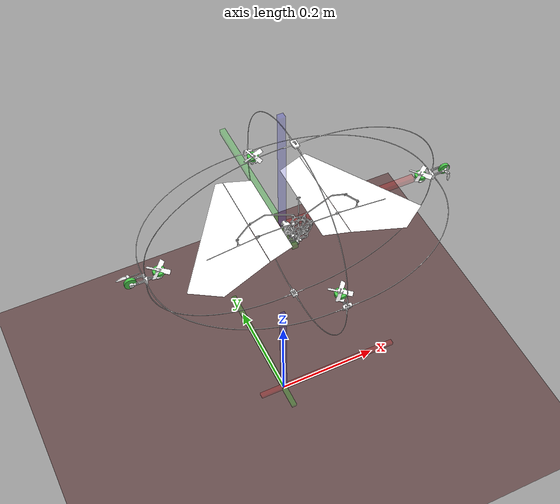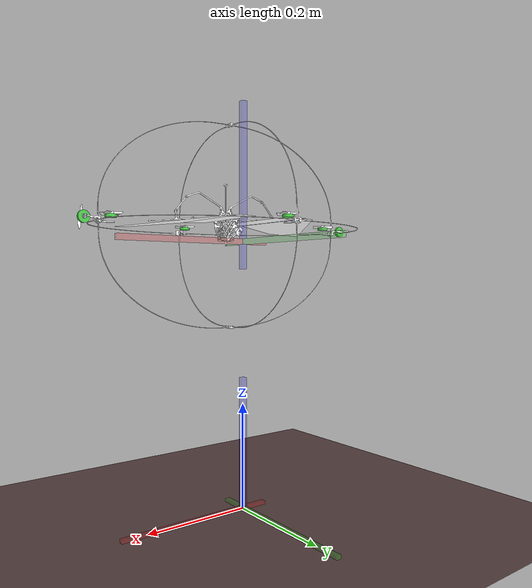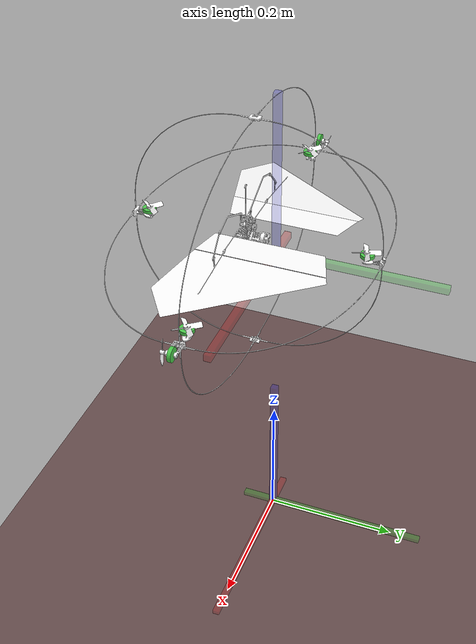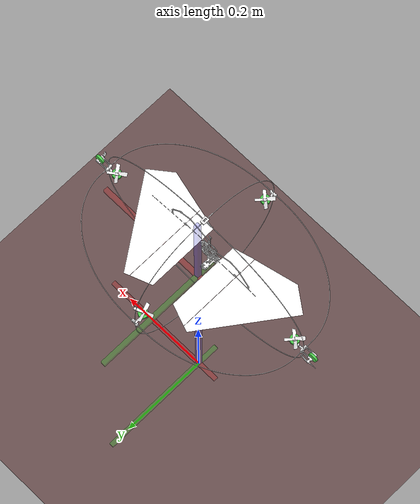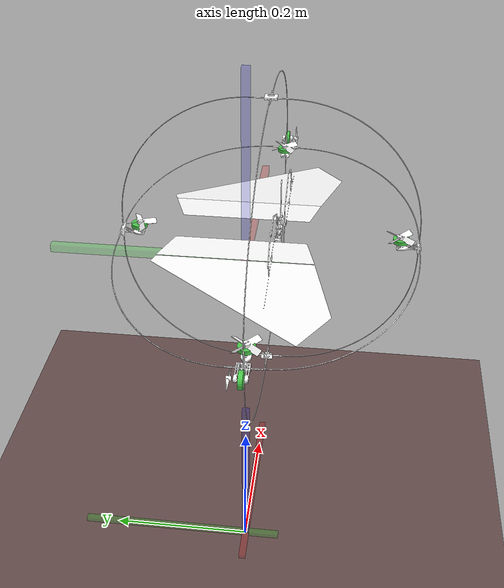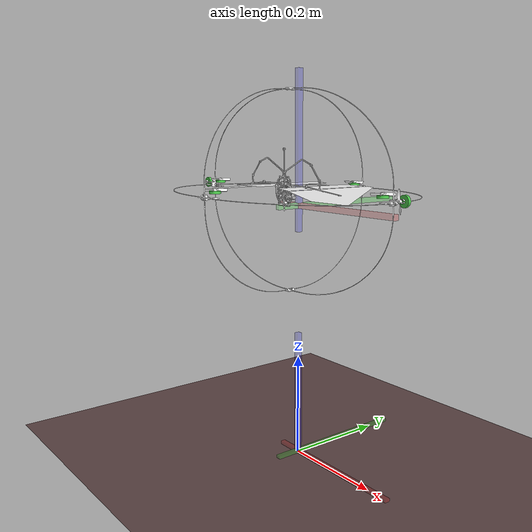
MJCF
<mujoco model="Flappy_v3">
<!-- This version is for Initial RL. Propellers were added as control input. Mass property,
    thrust/torque from the motor may not be correct. Use built in aerodynamics.  -->
  <compiler angle="radian" meshdir="meshes/"/>
  <option impratio="1" gravity="0 0 -9.81"  integrator="Euler" density="1.225" viscosity="1.789e-5" >
  </option>

  <asset>
    <texture builtin="gradient" type="skybox" height="100" width="100" rgb1="1 1 1" rgb2=".6 .8 1"/>
    <texture name="texgeom" builtin="flat" height="1278" mark="cross" markrgb="1 1 1" random="0.01" rgb1="0.8 0.6 0.4" rgb2="0.8 0.6 0.4" type="cube" width="127"/>
    <texture name="texplane" builtin="checker" height="100" width="100" rgb1="0 0 0" rgb2="0.8 0.8 0.8" type="2d"/>
    <material name="MatPlane" reflectance="0.5" shininess="1" specular="1" texrepeat="60 60" texture="texplane"/>
    <mesh name="Base" file="Base.STL"/>
    <mesh name="L1" file="L1.STL"/>
    <mesh name="L2" file="L2.STL"/>
    <mesh name="L1R" file="L1R.STL"/>
    <mesh name="L2R" file="L2R.STL"/>
    <mesh name="L3" file="L3.STL"/>
    <mesh name="L7" file="L7.STL"/>
    <mesh name="L6" file="L6.STL"/>
    <mesh name="L5" file="L5.STL"/>
    <mesh name="L4" file="L4.STL"/>
    <mesh name="L3R" file="L3R.STL"/>
    <mesh name="L7R" file="L7R.STL"/>
    <mesh name="L6R" file="L6R.STL"/>
    <mesh name="L5R" file="L5R.STL"/>
    <mesh name="L4R" file="L4R.STL"/>
  </asset>

  <default>
    <equality solref="1e-5 1"/>
  </default>

  <worldbody>
    <light cutoff="100" diffuse="1 1 1" dir="-0 0 -1.3" directional="true" exponent="1" pos="0 0 1.3" specular=".1 .1 .1"/>
    <geom conaffinity="1" condim="3" material="MatPlane" name="floor" pos="0 0 0" rgba="0.4 0.3 0.3 1" size="5 5 0.2" type="plane"/>
    <body name='Base' pos='0 0 0.5'>
      <freejoint/>

      <site name="motor1" type="cylinder" pos="0.009 -.19 .035" size=".01 0.0025" quat="1 0 0 0" rgba=".3 .8 .3 1"/> Front
      <site name="motor2" type="cylinder" pos="0.009 .135 .035" size=".01 0.0025" quat="1 0 0 0" rgba=".3 .8 .3 1"/> Back
      <site name="motor3" type="cylinder" pos=".2455 -0.028 .035" size=".01 .0025" quat="1 0 0 0" rgba=".3 .8 .3 1"/> Right
      <site name="motor4" type="cylinder" pos="-.227 -0.028 .035" size=".01 .0025" quat="1 0 0 0" rgba=".3 .8 .3 1"/> Left

      <site name="motor5" type="cylinder" pos="-.275 -0.028 .031" size=".01 .0025" quat="0.7071068 0.7071068 0 0 " rgba=".3 .8 .3 1"/> Left
      <site name="motor6" type="cylinder" pos=".292 -0.028 .031" size=".01 .0025" quat="0.7071068 0.7071068 0 0 " rgba=".3 .8 .3 1"/> Right

      <geom type="mesh" contype="0" conaffinity="0" group="1" density="0" rgba="1 1 1 1" mesh="Base"/>
      <geom type="mesh" rgba="1 1 1 1" mesh="Base"/>
      <inertial pos="0 0 0" quat="1 0 0 0" mass="0.057" diaginertia="2.603e-04 1.061e-03 1.129e-03"/>
      <body name="L1" pos="-0.001046 -0.04588 0.019419" quat="0.696041 -0.696044 -0.124599 -0.1246">
        <inertial pos="1.99134e-08 0.00239727 0.00203608" quat="0.533138 0.464504 -0.464504 0.533138" mass="0.000161525" diaginertia="2.05453e-09 1.83052e-09 5.8028e-10"/>
        <joint name="J1" pos="0 0 0" axis="0 0 1" damping="1"/>
        <geom type="mesh" contype="0" conaffinity="0" group="1" density="0" rgba="1 1 1 1" mesh="L1"/>
        <geom type="mesh" rgba="1 1 1 1" mesh="L1"/>
        <body name="L2" pos="0 0.0075 0.0003" quat="-3.50741e-06 0.954862 -0.297048 1.09112e-06">
          <inertial pos="0.0166046 0.000296703 0.0005" quat="0.0166331 0.706911 -0.0166331 0.706911" mass="0.000195528" diaginertia="2.88378e-08 2.85892e-08 2.81176e-10"/>
          <joint name="J2" pos="0 0 0" axis="0 0 1" damping="0.1"/>
          <geom type="mesh" contype="0" conaffinity="0" group="1" density="0" rgba="1 1 1 1" mesh="L2"/>
          <geom type="mesh" rgba="1 1 1 1" mesh="L2"/>
          <body name="L4" pos="0.0040958 0.0028679 0.001" quat="0.962398 0 0 0.271643">
            <inertial pos="0.0195927 0.00283964 0.0005" quat="-0.0252401 0.706656 0.0252401 0.706656" mass="0.000187735" diaginertia="2.89369e-08 2.80109e-08 9.57333e-10"/>
            <joint name="J3" type='hinge' pos="0 0 0" axis="0 0 1" damping="0.1"/>
            <geom type="mesh" contype="0" conaffinity="0" group="1" density="0" rgba="1 1 1 1" mesh="L4"/>
            <geom type="mesh" rgba="1 1 1 1" mesh="L4"/>
            <body name="L5" pos="0.03276 -0.014646 -0.001" quat="0.86311 0 0 -0.505016">
              <inertial pos="0.0281135 0.00985493 0.0005" quat="0.0127074 0.706993 -0.0127074 0.706993" mass="0.000551493" diaginertia="4.88071e-07 4.68887e-07 1.92764e-08"/>
              <joint name="J7" type='hinge' pos="-0.01118034 0.01 0.001" axis="0 0 1"  damping="0.1"/>
              <geom type="mesh" contype="0" conaffinity="0" group="1" density="0" rgba="1 1 1 1" mesh="L5"/>
              <geom type="mesh" rgba="1 1 1 1" mesh="L5"/>
            </body>
          </body>
        </body>
      </body>
      <body name="L1R" pos="0.018954 -0.03888 0.019419" quat="-2.97453e-06 0.586718 -2.15514e-06 -0.809791">
        <inertial pos="0.00010561 0 0" quat="0.5 0.5 0.5 0.5" mass="0.000441815" diaginertia="2.9266e-08 1.49569e-08 1.46036e-08"/>
        <joint name="J1R" pos="0 0 0" axis="0 1 0" damping="0.5"/>
        <geom type="mesh" contype="0" conaffinity="0" group="1" density="0" rgba="1 1 1 1" mesh="L1R"/>
        <geom type="mesh" rgba="1 1 1 1" mesh="L1R"/>
        <body name="L2R" pos="0.0075 -0.0007 0" quat="-0.318876 -0.31887 0.631128 -0.631123">
          <inertial pos="0.0166046 0.000296703 0.0005" quat="0.0166331 0.706911 -0.0166331 0.706911" mass="0.000195528" diaginertia="2.88378e-08 2.85892e-08 2.81176e-10"/>
          <joint name="J2R" pos="0 0 0" axis="0 0 1" damping="0.1"/>
          <geom type="mesh" contype="0" conaffinity="0" group="1" density="0" rgba="1 1 1 1" mesh="L2R"/>
          <geom type="mesh" rgba="1 1 1 1" mesh="L2R"/>
          <body name="L4R" pos="0.0040958 0.0028679 0.001" quat="0.962428 0 0 0.271537">
            <inertial pos="0.0195927 0.00283964 0.0005" quat="-0.0252401 0.706656 0.0252401 0.706656" mass="0.000187735" diaginertia="2.89369e-08 2.80109e-08 9.57333e-10"/>
            <joint name="J3R" pos="0 0 0" axis="0 0 1" damping="0.1"/>
            <geom type="mesh" contype="0" conaffinity="0" group="1" density="0" rgba="1 1 1 1" mesh="L4R"/>
            <geom type="mesh" rgba="1 1 1 1" mesh="L4R"/>
            <body name="L5R" pos="0.032953 -0.014687 -0.001" quat="0.866425 0 0 -0.499308">
              <inertial pos="0.0281135 0.00985493 0.0005" quat="0.0127074 0.706993 -0.0127074 0.706993" mass="0.000551493" diaginertia="4.88071e-07 4.68887e-07 1.92764e-08"/>
              <joint name="J7R" pos="-0.01118034 0.01 0.001" axis="0 0 1" damping="0.1"/>
              <geom type="mesh" contype="0" conaffinity="0" group="1" density="0" rgba="1 1 1 1" mesh="L5R"/>
              <geom type="mesh" rgba="1 1 1 1" mesh="L5R"/>
            </body>
          </body>
        </body>
      </body>
      <body name="L3" pos="0.029627 -0.04658 0.036742" quat="0.702183 0.702185 -0.0832906 0.0832909">
        <inertial pos="0.0187353 -0.000212053 -0.00188487" quat="0.549572 0.550363 0.444844 0.444055" mass="0.000339676" diaginertia="1.60431e-07 1.2157e-07 4.10467e-08"/>
        <joint name="J5" pos="0 0 0" axis="0 0 1" damping="0.5"/>
        <geom type="mesh" contype="0" conaffinity="0" group="1" density="0" rgba="1 1 1 1" mesh="L3"/>
        <geom type="mesh" rgba="1 1 1 1" mesh="L3" fluidshape="ellipsoid"/>
        <body name="L7" pos="0.081323 -0.018528 -0.001" quat="0.985802 0 0 -0.167911">
          <inertial pos="0.00566219 0.00137138 -0.00104006" quat="0.53849 0.466014 0.462135 0.52848" mass="0.000426449" diaginertia="3.70217e-07 2.95816e-07 8.98173e-08"/>
          <joint name="J6" pos="-0.035 0 0.001" axis="0 0 1" damping="0.1"/>
          <geom type="mesh" contype="0" conaffinity="0" group="1" density="0" rgba="1 1 1 1" mesh="L7"/>
          <geom type="mesh" rgba="1 1 1 1" mesh="L7" fluidshape="ellipsoid"/>
          <body name="L6" pos="-0.02625 0.039636 0.001" quat="0.929832 0 0 -0.367984">
            <inertial pos="0.0183924 -0.000169189 0.0005" quat="0.00123631 0.707106 -0.00123631 0.707106" mass="0.00017604" diaginertia="2.69855e-08 2.68812e-08 1.3361e-10"/>
            <joint name="J10" pos="0.036 0 0" axis="0 0 1" damping="0.1"/>
            <geom type="mesh" contype="0" conaffinity="0" group="1" density="0" rgba="1 1 1 1" mesh="L6"/>
            <geom type="mesh" rgba="1 1 1 1" mesh="L6"/>
          </body>
        </body>
      </body>
      <body name="L3R" pos="-0.011719 -0.03718 0.036742" quat="-0.0922989 0.0922934 0.701059 0.701056">
        <inertial pos="0.0187353 -0.000212053 0.00240482" quat="0.550363 0.549572 0.444055 0.444844" mass="0.000339676" diaginertia="1.60431e-07 1.2157e-07 4.10467e-08"/>
        <joint name="J5R" pos="0 0 0" axis="0 0 1" damping="0.5"/>
        <geom type="mesh" contype="0" conaffinity="0" group="1" density="0" rgba="1 1 1 1" mesh="L3R"/>
        <geom type="mesh" rgba="1 1 1 1" mesh="L3R" fluidshape="ellipsoid"/>
        <body name="L7R" pos="0.080843 -0.019814 -0.001" quat="0.98232 0 0 -0.187209">
          <inertial pos="0.00566219 0.00137138 0.00138654" quat="0.466014 0.53849 0.52848 0.462135" mass="0.000426449" diaginertia="3.70217e-07 2.95816e-07 8.98173e-08"/>
          <joint name="J6R" pos="-0.035 0 0.001" axis="0 0 1" damping="0.1"/>
          <geom type="mesh" contype="0" conaffinity="0" group="1" density="0" rgba="1 1 1 1" mesh="L7R"/>
          <geom type="mesh" rgba="1 1 1 1" mesh="L7R" fluidshape="ellipsoid"/>
          <body name="L6R" pos="-0.026802 0.039034 0.001" quat="0.933943 0 0 -0.357421">
            <inertial pos="0.0183924 -0.000169189 0.0005" quat="0.00123631 0.707106 -0.00123631 0.707106" mass="0.00017604" diaginertia="2.69855e-08 2.68812e-08 1.3361e-10"/>
            <joint name="J10R" pos="0.036 0 0" axis="0 0 1" damping="0.1"/>
            <geom type="mesh" contype="0" conaffinity="0" group="1" density="0" rgba="1 1 1 1" mesh="L6R"/>
            <geom type="mesh" rgba="1 1 1 1" mesh="L6R"/>
          </body>
        </body>
      </body>

      <site name="x_axis_b" type="box" pos=".1 .0 .0" size=".15 .005 .005" quat="1 0 0 0" rgba="1 0 0 0.2"/>
      <site name="y_axis_b" type="box" pos=".0 .1 .0" size=".15 .005 .005" quat=".707 0 0 .707" rgba="0 1 0 0.2"/>
      <site name="z_axis_b" type="box" pos=".0 .0 .1" size=".15 .005 .005" quat="-.707 0 .707 0" rgba="0 0 1 0.2"/>
    </body>

    <site name="x_axis" type="box" pos=".1 .0 .0" size=".15 .005 .005" quat="1 0 0 0" rgba="1 0 0 0.2"/>
    <site name="y_axis" type="box" pos=".0 .1 .0" size=".15 .005 .005" quat=".707 0 0 .707" rgba="0 1 0 0.2"/>
    <site name="z_axis" type="box" pos=".0 .0 .1" size=".15 .005 .005" quat="-.707 0 .707 0" rgba="0 0 1 0.2"/>
  </worldbody>

  <equality>
    <connect name = 'J4-eq' body1='L3'  body2='L2' anchor='-0.00670820 0.006 0'/>
    <connect name = 'J9-eq' body1='L6'  body2='L5' anchor='0 0 0'/>
    <connect name = 'J8-eq' body1='Base'  body2='L5' anchor='0.01825164 -0.04558027 0.04915587'/>
    <connect name = 'J4R-eq' body1='L3R'  body2='L2R' anchor='-0.00670820 0.006 0'/>
    <connect name = 'J9R-eq' body1='L6R'  body2='L5R' anchor='0 0 0'/>
    <connect name = 'J8R-eq' body1='Base'  body2='L5R' anchor='-0.00034357 -0.03818027 0.04915587'/>
    <joint name = 'LeftRight' joint1='J1'  joint2='J1R' polycoef="0 1 0 0 0"/>
  </equality>

  <actuator>
    <motor name="drive" joint="J1" gear="29.8451302"/> 4.75Hz
    <motor ctrllimited="true" ctrlrange="0 2" gear="0  0. 1. 0. 0. -0.016" site="motor1"/> unit: N
    <motor ctrllimited="true" ctrlrange="0 2" gear="0  0. 1. 0. 0. -0.016" site="motor2"/>
    <motor ctrllimited="true" ctrlrange="0 2" gear="0  0. 1. 0. 0. -0.016" site="motor3"/>
    <motor ctrllimited="true" ctrlrange="0 2" gear="0  0. 1. 0. 0. -0.016" site="motor4"/>
    <motor ctrllimited="true" ctrlrange="0 0.5" gear="0  0. 1. 0. 0.  0.016" site="motor5"/>
    <motor ctrllimited="true" ctrlrange="0 0.5" gear="0  0. -1. 0. 0. -0.016" site="motor6"/>
  </actuator>

</mujoco>
